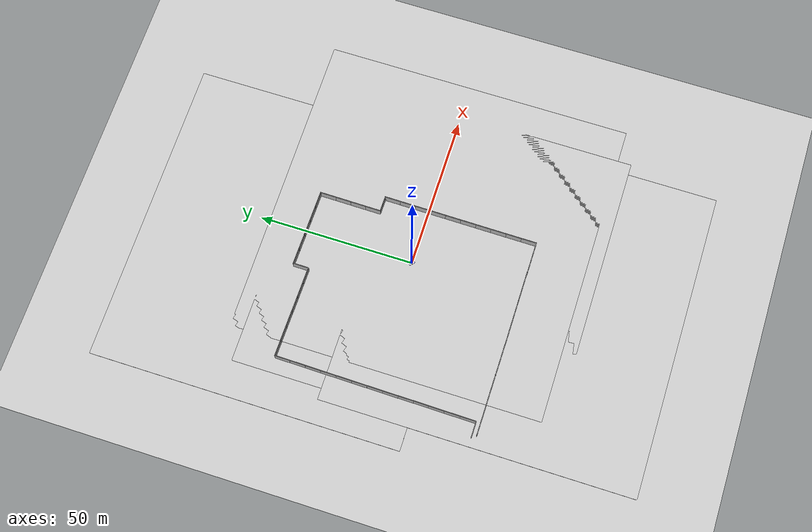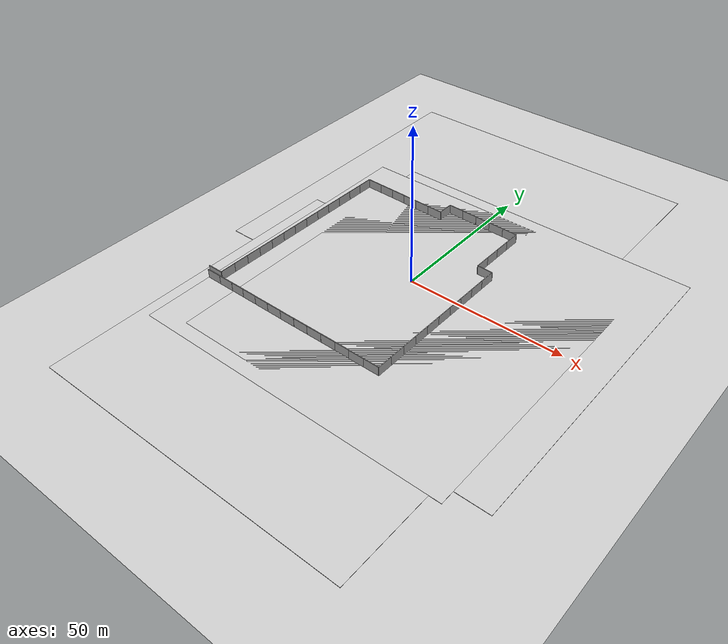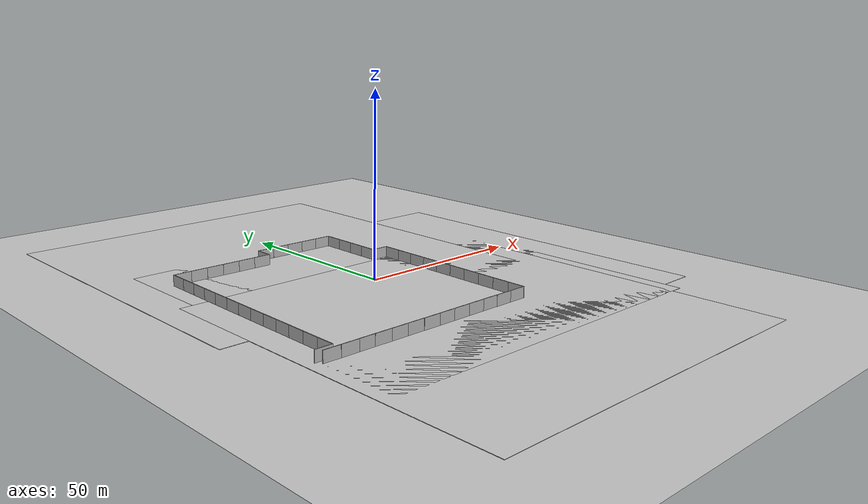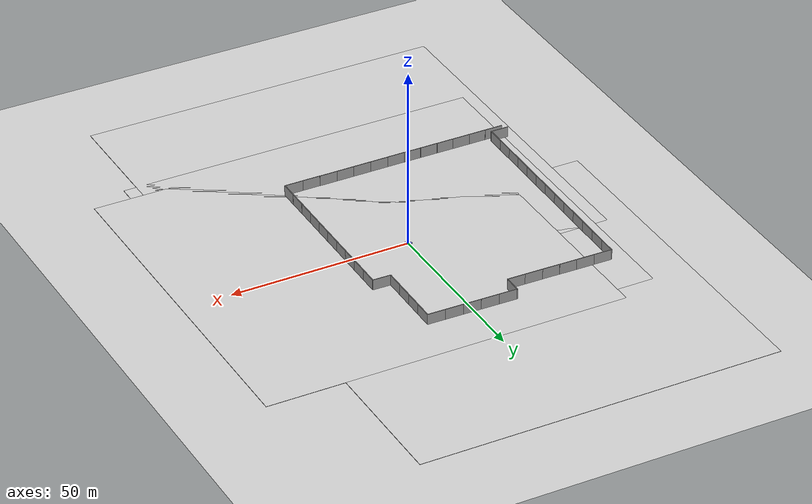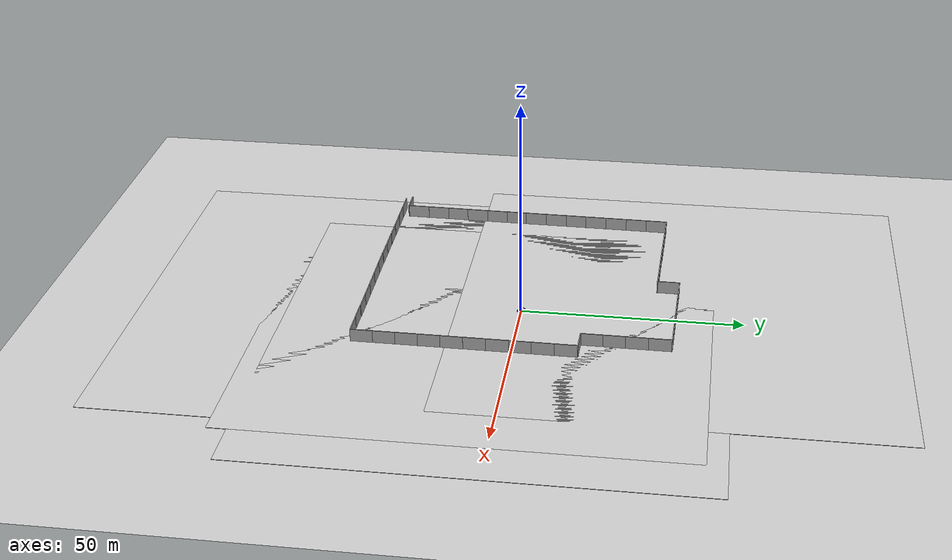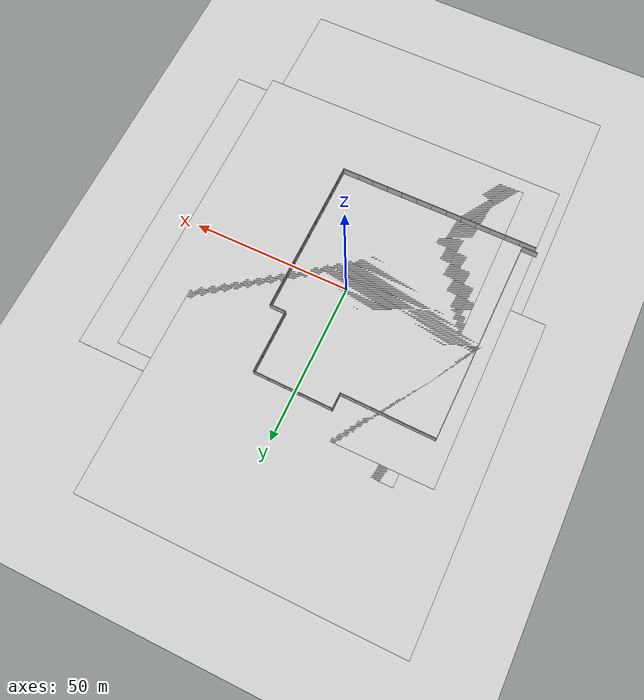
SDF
<sdf version="1.9">
 <world name="robotics_room">
  <physics name="1ms" type="ignored">
   <max_step_size>0.001</max_step_size>
   <real_time_factor>1</real_time_factor>
   <real_time_update_rate>1000</real_time_update_rate>
  </physics>
  <plugin name="ignition::gazebo::systems::Physics" filename="libignition-gazebo-physics-system.so"/>
  <plugin name="ignition::gazebo::systems::UserCommands" filename="libignition-gazebo-user-commands-system.so"/>
  <plugin name="ignition::gazebo::systems::SceneBroadcaster" filename="libignition-gazebo-scene-broadcaster-system.so"/>
  <plugin name="ignition::gazebo::systems::Sensors" filename="libignition-gazebo-sensors-system.so">
   <render_engine>ogre2</render_engine>
  </plugin>
  <gravity>0 0 -9.8</gravity>
  <magnetic_field>6e-06 2.3e-05 -4.2e-05</magnetic_field>
  <atmosphere type="adiabatic"/>
  <scene><ambient>0.4 0.4 0.4 1</ambient><background>0.7 0.7 0.7 1</background><shadows>true</shadows></scene>
  <model name="ground_plane">
   <static>true</static>
   <link name="link">
    <collision name="collision">
     <geometry><plane><normal>0 0 1</normal><size>100 100</size></plane></geometry>
     <surface>
      <friction>
       <ode><mu>50</mu></ode>
       <bullet><friction>1</friction><rolling_friction>0.10000000000000001</rolling_friction></bullet>
      </friction>
     </surface>
    </collision>
    <visual name="visual">
     <geometry><plane><normal>0 0 1</normal><size>100 100</size></plane></geometry>
     <material>
      <ambient>0.8 0.8 0.8 1</ambient>
      <diffuse>0.8 0.8 0.8 1</diffuse>
      <specular>0.8 0.8 0.8 1</specular>
     </material>
    </visual>
    <inertial>
     <mass>1</mass>
     <inertia><ixx>1</ixx><ixy>0</ixy><ixz>0</ixz><iyy>1</iyy><iyz>0</iyz><izz>1</izz></inertia>
    </inertial>
   </link>
  </model>
  <include>
   <uri>file:///home/dliujm/ros2_ws/install/robot_desc/share/robot_desc/models/lucy</uri>
   <name>lucy_robot</name>
   <pose>0 0 0 -0 0 -0.78</pose>
  </include>
  <model name="ground_plane_1">
   <static>true</static>
   <link name="link">
    <collision name="collision">
     <geometry><plane><normal>0 0 1</normal><size>100 100</size></plane></geometry>
     <surface>
      <friction>
       <ode><mu>50</mu></ode>
       <bullet><friction>1</friction><rolling_friction>0.10000000000000001</rolling_friction></bullet>
      </friction>
     </surface>
    </collision>
    <visual name="visual">
     <geometry><plane><normal>0 0 1</normal><size>100 100</size></plane></geometry>
     <material>
      <ambient>0.8 0.8 0.8 1</ambient>
      <diffuse>0.8 0.8 0.8 1</diffuse>
      <specular>0.8 0.8 0.8 1</specular>
     </material>
    </visual>
    <inertial>
     <mass>1</mass>
     <inertia><ixx>1</ixx><ixy>0</ixy><ixz>0</ixz><iyy>1</iyy><iyz>0</iyz><izz>1</izz></inertia>
    </inertial>
   </link>
   <pose>3.37132 -6.94607 0 0 -0 0</pose>
  </model>
  <model name="ground_plane_1_1">
   <static>true</static>
   <link name="link">
    <collision name="collision">
     <geometry><plane><normal>0 0 1</normal><size>100 100</size></plane></geometry>
     <surface>
      <friction>
       <ode><mu>50</mu></ode>
       <bullet><friction>1</friction><rolling_friction>0.10000000000000001</rolling_friction></bullet>
      </friction>
     </surface>
    </collision>
    <visual name="visual">
     <geometry><plane><normal>0 0 1</normal><size>100 100</size></plane></geometry>
     <material>
      <ambient>0.8 0.8 0.8 1</ambient>
      <diffuse>0.8 0.8 0.8 1</diffuse>
      <specular>0.8 0.8 0.8 1</specular>
     </material>
    </visual>
    <inertial>
     <mass>1</mass>
     <inertia><ixx>1</ixx><ixy>0</ixy><ixz>0</ixz><iyy>1</iyy><iyz>0</iyz><izz>1</izz></inertia>
    </inertial>
   </link>
   <pose>13.6849 -2.64222 0 0 -0 0</pose>
  </model>
  <model name="wall">
   <static>true</static>
   <link name="link">
    <collision name="collision"><geometry><box><size>5 0.2 3</size></box></geometry></collision>
    <visual name="visual">
     <geometry><box><size>5 0.2 3</size></box></geometry>
     <material><ambient>0.7 0.7 0.7 1</ambient><diffuse>0.7 0.7 0.7 1</diffuse></material>
    </visual>
    <inertial>
     <mass>1</mass>
     <inertia><ixx>1</ixx><ixy>0</ixy><ixz>0</ixz><iyy>1</iyy><iyz>0</iyz><izz>1</izz></inertia>
    </inertial>
   </link>
   <pose>0 -35.2766 1.50449 0 -0 0</pose>
  </model>
  <model name="ground_plane_1_2">
   <static>true</static>
   <link name="link">
    <collision name="collision">
     <geometry><plane><normal>0 0 1</normal><size>100 100</size></plane></geometry>
     <surface>
      <friction>
       <ode><mu>50</mu></ode>
       <bullet><friction>1</friction><rolling_friction>0.10000000000000001</rolling_friction></bullet>
      </friction>
     </surface>
    </collision>
    <visual name="visual">
     <geometry><plane><normal>0 0 1</normal><size>100 100</size></plane></geometry>
     <material>
      <ambient>0.8 0.8 0.8 1</ambient>
      <diffuse>0.8 0.8 0.8 1</diffuse>
      <specular>0.8 0.8 0.8 1</specular>
     </material>
    </visual>
    <inertial>
     <mass>1</mass>
     <inertia><ixx>1</ixx><ixy>0</ixy><ixz>0</ixz><iyy>1</iyy><iyz>0</iyz><izz>1</izz></inertia>
    </inertial>
   </link>
   <pose>-0.202127 -35.9388 0 0 -0 0</pose>
  </model>
  <model name="wall_1">
   <static>true</static>
   <link name="link">
    <collision name="collision"><geometry><box><size>5 0.2 3</size></box></geometry></collision>
    <visual name="visual">
     <geometry><box><size>5 0.2 3</size></box></geometry>
     <material><ambient>0.7 0.7 0.7 1</ambient><diffuse>0.7 0.7 0.7 1</diffuse></material>
    </visual>
   </link>
   <pose>-5.01711 -35.2867 1.50449 0 -0 0</pose>
  </model>
  <model name="wall_2">
   <static>true</static>
   <link name="link">
    <collision name="collision"><geometry><box><size>5 0.2 3</size></box></geometry></collision>
    <visual name="visual">
     <geometry><box><size>5 0.2 3</size></box></geometry>
     <material><ambient>0.7 0.7 0.7 1</ambient><diffuse>0.7 0.7 0.7 1</diffuse></material>
    </visual>
   </link>
   <pose>-10.0087 -35.2904 1.50449 0 -0 0</pose>
  </model>
  <model name="wall_3">
   <static>true</static>
   <link name="link">
    <collision name="collision"><geometry><box><size>5 0.2 3</size></box></geometry></collision>
    <visual name="visual">
     <geometry><box><size>5 0.2 3</size></box></geometry>
     <material><ambient>0.7 0.7 0.7 1</ambient><diffuse>0.7 0.7 0.7 1</diffuse></material>
    </visual>
   </link>
   <pose>4.87545 -35.2716 1.50449 0 -0 0</pose>
  </model>
  <model name="wall_4">
   <static>true</static>
   <link name="link">
    <collision name="collision"><geometry><box><size>5 0.2 3</size></box></geometry></collision>
    <visual name="visual">
     <geometry><box><size>5 0.2 3</size></box></geometry>
     <material><ambient>0.7 0.7 0.7 1</ambient><diffuse>0.7 0.7 0.7 1</diffuse></material>
    </visual>
   </link>
   <pose>9.82758 -35.33 1.50449 0 -0 0</pose>
  </model>
  <model name="wall_5">
   <static>true</static>
   <link name="link">
    <collision name="collision"><geometry><box><size>5 0.2 3</size></box></geometry></collision>
    <visual name="visual">
     <geometry><box><size>5 0.2 3</size></box></geometry>
     <material><ambient>0.7 0.7 0.7 1</ambient><diffuse>0.7 0.7 0.7 1</diffuse></material>
    </visual>
   </link>
   <pose>14.8056 -35.3183 1.50449 0 -0 0</pose>
  </model>
  <model name="wall_7">
   <static>true</static>
   <link name="link">
    <collision name="collision"><geometry><box><size>5 0.2 3</size></box></geometry></collision>
    <visual name="visual">
     <geometry><box><size>5 0.2 3</size></box></geometry>
     <material><ambient>0.7 0.7 0.7 1</ambient><diffuse>0.7 0.7 0.7 1</diffuse></material>
    </visual>
   </link>
   <pose>17.4193 -32.9231 1.50449 0 0 -1.57867</pose>
  </model>
  <model name="wall_7_1">
   <static>true</static>
   <link name="link">
    <collision name="collision"><geometry><box><size>5 0.2 3</size></box></geometry></collision>
    <visual name="visual">
     <geometry><box><size>5 0.2 3</size></box></geometry>
     <material><ambient>0.7 0.7 0.7 1</ambient><diffuse>0.7 0.7 0.7 1</diffuse></material>
    </visual>
   </link>
   <pose>17.4426 -27.9423 1.50449 0 0 -1.57867</pose>
  </model>
  <model name="wall_7_2">
   <static>true</static>
   <link name="link">
    <collision name="collision"><geometry><box><size>5 0.2 3</size></box></geometry></collision>
    <visual name="visual">
     <geometry><box><size>5 0.2 3</size></box></geometry>
     <material><ambient>0.7 0.7 0.7 1</ambient><diffuse>0.7 0.7 0.7 1</diffuse></material>
    </visual>
   </link>
   <pose>17.4693 -22.9812 1.50449 0 0 -1.57867</pose>
  </model>
  <model name="wall_7_3">
   <static>true</static>
   <link name="link">
    <collision name="collision"><geometry><box><size>5 0.2 3</size></box></geometry></collision>
    <visual name="visual">
     <geometry><box><size>5 0.2 3</size></box></geometry>
     <material><ambient>0.7 0.7 0.7 1</ambient><diffuse>0.7 0.7 0.7 1</diffuse></material>
    </visual>
   </link>
   <pose>17.508 -18.0005 1.50449 0 0 -1.57867</pose>
  </model>
  <model name="wall_7_4">
   <static>true</static>
   <link name="link">
    <collision name="collision"><geometry><box><size>5 0.2 3</size></box></geometry></collision>
    <visual name="visual">
     <geometry><box><size>5 0.2 3</size></box></geometry>
     <material><ambient>0.7 0.7 0.7 1</ambient><diffuse>0.7 0.7 0.7 1</diffuse></material>
    </visual>
   </link>
   <pose>17.5521 -12.9986 1.50449 0 0 -1.57867</pose>
  </model>
  <model name="wall_7_5">
   <static>true</static>
   <link name="link">
    <collision name="collision"><geometry><box><size>5 0.2 3</size></box></geometry></collision>
    <visual name="visual">
     <geometry><box><size>5 0.2 3</size></box></geometry>
     <material><ambient>0.7 0.7 0.7 1</ambient><diffuse>0.7 0.7 0.7 1</diffuse></material>
    </visual>
   </link>
   <pose>17.5839 -7.99492 1.50449 0 0 -1.57867</pose>
  </model>
  <model name="wall_7_6">
   <static>true</static>
   <link name="link">
    <collision name="collision"><geometry><box><size>5 0.2 3</size></box></geometry></collision>
    <visual name="visual">
     <geometry><box><size>5 0.2 3</size></box></geometry>
     <material><ambient>0.7 0.7 0.7 1</ambient><diffuse>0.7 0.7 0.7 1</diffuse></material>
    </visual>
   </link>
   <pose>17.6254 -3.00807 1.50449 0 0 -1.57867</pose>
  </model>
  <model name="wall_7_7">
   <static>true</static>
   <link name="link">
    <collision name="collision"><geometry><box><size>5 0.2 3</size></box></geometry></collision>
    <visual name="visual">
     <geometry><box><size>5 0.2 3</size></box></geometry>
     <material><ambient>0.7 0.7 0.7 1</ambient><diffuse>0.7 0.7 0.7 1</diffuse></material>
    </visual>
   </link>
   <pose>17.6643 1.98188 1.50449 0 0 -1.57867</pose>
  </model>
  <model name="wall_7_8">
   <static>true</static>
   <link name="link">
    <collision name="collision"><geometry><box><size>5 0.2 3</size></box></geometry></collision>
    <visual name="visual">
     <geometry><box><size>5 0.2 3</size></box></geometry>
     <material><ambient>0.7 0.7 0.7 1</ambient><diffuse>0.7 0.7 0.7 1</diffuse></material>
    </visual>
   </link>
   <pose>17.7003 6.98697 1.50449 0 0 -1.57867</pose>
  </model>
  <model name="wall_7_9">
   <static>true</static>
   <link name="link">
    <collision name="collision"><geometry><box><size>5 0.2 3</size></box></geometry></collision>
    <visual name="visual">
     <geometry><box><size>5 0.2 3</size></box></geometry>
     <material><ambient>0.7 0.7 0.7 1</ambient><diffuse>0.7 0.7 0.7 1</diffuse></material>
    </visual>
   </link>
   <pose>17.744 11.9433 1.50449 0 0 -1.57867</pose>
  </model>
  <model name="wall_7_10">
   <static>true</static>
   <link name="link">
    <collision name="collision"><geometry><box><size>5 0.2 3</size></box></geometry></collision>
    <visual name="visual">
     <geometry><box><size>5 0.2 3</size></box></geometry>
     <material><ambient>0.7 0.7 0.7 1</ambient><diffuse>0.7 0.7 0.7 1</diffuse></material>
    </visual>
   </link>
   <pose>15.3706 14.5675 1.50449 0 -0 3.12423</pose>
  </model>
  <model name="wall_7_9_1">
   <static>true</static>
   <link name="link">
    <collision name="collision"><geometry><box><size>5 0.2 3</size></box></geometry></collision>
    <visual name="visual">
     <geometry><box><size>5 0.2 3</size></box></geometry>
     <material><ambient>0.7 0.7 0.7 1</ambient><diffuse>0.7 0.7 0.7 1</diffuse></material>
    </visual>
   </link>
   <pose>12.7866 17.0253 1.50449 0 0 -1.57867</pose>
  </model>
  <model name="wall_7_9_2">
   <static>true</static>
   <link name="link">
    <collision name="collision"><geometry><box><size>5 0.2 3</size></box></geometry></collision>
    <visual name="visual">
     <geometry><box><size>5 0.2 3</size></box></geometry>
     <material><ambient>0.7 0.7 0.7 1</ambient><diffuse>0.7 0.7 0.7 1</diffuse></material>
    </visual>
   </link>
   <pose>12.8326 21.9834 1.50449 0 0 -1.57867</pose>
  </model>
  <model name="wall_7_9_3">
   <static>true</static>
   <link name="link">
    <collision name="collision"><geometry><box><size>5 0.2 3</size></box></geometry></collision>
    <visual name="visual">
     <geometry><box><size>5 0.2 3</size></box></geometry>
     <material><ambient>0.7 0.7 0.7 1</ambient><diffuse>0.7 0.7 0.7 1</diffuse></material>
    </visual>
   </link>
   <pose>12.8732 26.9224 1.50449 0 0 -1.57867</pose>
  </model>
  <model name="wall_7_9_4">
   <static>true</static>
   <link name="link">
    <collision name="collision"><geometry><box><size>5 0.2 3</size></box></geometry></collision>
    <visual name="visual">
     <geometry><box><size>5 0.2 3</size></box></geometry>
     <material><ambient>0.7 0.7 0.7 1</ambient><diffuse>0.7 0.7 0.7 1</diffuse></material>
    </visual>
   </link>
   <pose>12.917 31.9173 1.50449 0 0 -1.57867</pose>
  </model>
  <model name="wall_7_10_1">
   <static>true</static>
   <link name="link">
    <collision name="collision"><geometry><box><size>5 0.2 3</size></box></geometry></collision>
    <visual name="visual">
     <geometry><box><size>5 0.2 3</size></box></geometry>
     <material><ambient>0.7 0.7 0.7 1</ambient><diffuse>0.7 0.7 0.7 1</diffuse></material>
    </visual>
   </link>
   <pose>10.5507 34.5647 1.50449 0 -0 3.12423</pose>
  </model>
  <model name="wall_7_10_2">
   <static>true</static>
   <link name="link">
    <collision name="collision"><geometry><box><size>5 0.2 3</size></box></geometry></collision>
    <visual name="visual">
     <geometry><box><size>5 0.2 3</size></box></geometry>
     <material><ambient>0.7 0.7 0.7 1</ambient><diffuse>0.7 0.7 0.7 1</diffuse></material>
    </visual>
   </link>
   <pose>5.54363 34.6488 1.50449 0 -0 3.12423</pose>
  </model>
  <model name="wall_7_10_3">
   <static>true</static>
   <link name="link">
    <collision name="collision"><geometry><box><size>5 0.2 3</size></box></geometry></collision>
    <visual name="visual">
     <geometry><box><size>5 0.2 3</size></box></geometry>
     <material><ambient>0.7 0.7 0.7 1</ambient><diffuse>0.7 0.7 0.7 1</diffuse></material>
    </visual>
   </link>
   <pose>0.571802 34.7384 1.50449 0 -0 3.12423</pose>
  </model>
  <model name="wall_7_10_4">
   <static>true</static>
   <link name="link">
    <collision name="collision"><geometry><box><size>5 0.2 3</size></box></geometry></collision>
    <visual name="visual">
     <geometry><box><size>5 0.2 3</size></box></geometry>
     <material><ambient>0.7 0.7 0.7 1</ambient><diffuse>0.7 0.7 0.7 1</diffuse></material>
    </visual>
   </link>
   <pose>-4.45933 34.8251 1.50449 0 -0 3.12423</pose>
  </model>
  <model name="wall_7_10_5">
   <static>true</static>
   <link name="link">
    <collision name="collision"><geometry><box><size>5 0.2 3</size></box></geometry></collision>
    <visual name="visual">
     <geometry><box><size>5 0.2 3</size></box></geometry>
     <material><ambient>0.7 0.7 0.7 1</ambient><diffuse>0.7 0.7 0.7 1</diffuse></material>
    </visual>
   </link>
   <pose>-9.48187 34.9196 1.50449 0 -0 3.12423</pose>
  </model>
  <model name="wall_7_10_5_1">
   <static>true</static>
   <link name="link">
    <collision name="collision"><geometry><box><size>5 0.2 3</size></box></geometry></collision>
    <visual name="visual">
     <geometry><box><size>5 0.2 3</size></box></geometry>
     <material><ambient>0.7 0.7 0.7 1</ambient><diffuse>0.7 0.7 0.7 1</diffuse></material>
    </visual>
   </link>
   <pose>-12.1066 32.5743 1.50449 0 0 -1.58082</pose>
  </model>
  <model name="ground_plane_1_1_1">
   <static>true</static>
   <link name="link">
    <collision name="collision">
     <geometry><plane><normal>0 0 1</normal><size>100 100</size></plane></geometry>
     <surface>
      <friction>
       <ode><mu>50</mu></ode>
       <bullet><friction>1</friction><rolling_friction>0.10000000000000001</rolling_friction></bullet>
      </friction>
     </surface>
    </collision>
    <visual name="visual">
     <geometry><plane><normal>0 0 1</normal><size>100 100</size></plane></geometry>
     <material>
      <ambient>0.8 0.8 0.8 1</ambient>
      <diffuse>0.8 0.8 0.8 1</diffuse>
      <specular>0.8 0.8 0.8 1</specular>
     </material>
    </visual>
    <inertial>
     <mass>1</mass>
     <inertia><ixx>1</ixx><ixy>0</ixy><ixz>0</ixz><iyy>1</iyy><iyz>0</iyz><izz>1</izz></inertia>
    </inertial>
   </link>
   <pose>-7.7862 35.4267 0 0 -0 0</pose>
  </model>
  <model name="wall_7_10_5_2">
   <static>true</static>
   <link name="link">
    <collision name="collision"><geometry><box><size>5 0.2 3</size></box></geometry></collision>
    <visual name="visual">
     <geometry><box><size>5 0.2 3</size></box></geometry>
     <material><ambient>0.7 0.7 0.7 1</ambient><diffuse>0.7 0.7 0.7 1</diffuse></material>
    </visual>
   </link>
   <pose>-14.5273 30.0144 1.50449 0 -0 3.12423</pose>
  </model>
  <model name="wall_7_10_5_2_1">
   <static>true</static>
   <link name="link">
    <collision name="collision"><geometry><box><size>5 0.2 3</size></box></geometry></collision>
    <visual name="visual">
     <geometry><box><size>5 0.2 3</size></box></geometry>
     <material><ambient>0.7 0.7 0.7 1</ambient><diffuse>0.7 0.7 0.7 1</diffuse></material>
    </visual>
   </link>
   <pose>-19.5274 30.0957 1.50449 0 -0 3.12423</pose>
  </model>
  <model name="wall_7_10_5_2_1_1">
   <static>true</static>
   <link name="link">
    <collision name="collision"><geometry><box><size>5 0.2 3</size></box></geometry></collision>
    <visual name="visual">
     <geometry><box><size>5 0.2 3</size></box></geometry>
     <material><ambient>0.7 0.7 0.7 1</ambient><diffuse>0.7 0.7 0.7 1</diffuse></material>
    </visual>
   </link>
   <pose>-24.5301 30.1772 1.50449 0 -0 3.12423</pose>
  </model>
  <model name="wall_7_10_5_2_1_2">
   <static>true</static>
   <link name="link">
    <collision name="collision"><geometry><box><size>5 0.2 3</size></box></geometry></collision>
    <visual name="visual">
     <geometry><box><size>5 0.2 3</size></box></geometry>
     <material><ambient>0.7 0.7 0.7 1</ambient><diffuse>0.7 0.7 0.7 1</diffuse></material>
    </visual>
   </link>
   <pose>-29.3855 30.2908 1.50449 0 -0 3.12423</pose>
  </model>
  <model name="wall_7_10_5_2_1_3">
   <static>true</static>
   <link name="link">
    <collision name="collision"><geometry><box><size>5 0.2 3</size></box></geometry></collision>
    <visual name="visual">
     <geometry><box><size>5 0.2 3</size></box></geometry>
     <material><ambient>0.7 0.7 0.7 1</ambient><diffuse>0.7 0.7 0.7 1</diffuse></material>
    </visual>
   </link>
   <pose>-34.2301 30.3811 1.50449 0 -0 3.12423</pose>
  </model>
  <model name="wall_7_10_5_2_1_4">
   <static>true</static>
   <link name="link">
    <collision name="collision"><geometry><box><size>5 0.2 3</size></box></geometry></collision>
    <visual name="visual">
     <geometry><box><size>5 0.2 3</size></box></geometry>
     <material><ambient>0.7 0.7 0.7 1</ambient><diffuse>0.7 0.7 0.7 1</diffuse></material>
    </visual>
   </link>
   <pose>-39.219 30.4453 1.50449 0 -0 3.12423</pose>
  </model>
  <model name="wall_7_10_5_2_1_5">
   <static>true</static>
   <link name="link">
    <collision name="collision"><geometry><box><size>5 0.2 3</size></box></geometry></collision>
    <visual name="visual">
     <geometry><box><size>5 0.2 3</size></box></geometry>
     <material><ambient>0.7 0.7 0.7 1</ambient><diffuse>0.7 0.7 0.7 1</diffuse></material>
    </visual>
   </link>
   <pose>-41.8509 28.0967 1.50449 0 -0 1.55685</pose>
  </model>
  <model name="wall_7_10_5_2_1_5_1">
   <static>true</static>
   <link name="link">
    <collision name="collision"><geometry><box><size>5 0.2 3</size></box></geometry></collision>
    <visual name="visual">
     <geometry><box><size>5 0.2 3</size></box></geometry>
     <material><ambient>0.7 0.7 0.7 1</ambient><diffuse>0.7 0.7 0.7 1</diffuse></material>
    </visual>
   </link>
   <pose>-41.9211 23.1661 1.50449 0 -0 1.55685</pose>
  </model>
  <model name="wall_7_10_5_2_1_5_2">
   <static>true</static>
   <link name="link">
    <collision name="collision"><geometry><box><size>5 0.2 3</size></box></geometry></collision>
    <visual name="visual">
     <geometry><box><size>5 0.2 3</size></box></geometry>
     <material><ambient>0.7 0.7 0.7 1</ambient><diffuse>0.7 0.7 0.7 1</diffuse></material>
    </visual>
   </link>
   <pose>-41.9902 18.2015 1.50449 0 -0 1.55685</pose>
  </model>
  <model name="wall_7_10_5_2_1_5_3">
   <static>true</static>
   <link name="link">
    <collision name="collision"><geometry><box><size>5 0.2 3</size></box></geometry></collision>
    <visual name="visual">
     <geometry><box><size>5 0.2 3</size></box></geometry>
     <material><ambient>0.7 0.7 0.7 1</ambient><diffuse>0.7 0.7 0.7 1</diffuse></material>
    </visual>
   </link>
   <pose>-42.0628 13.2148 1.50449 0 -0 1.55685</pose>
  </model>
  <model name="wall_7_10_5_2_1_5_4">
   <static>true</static>
   <link name="link">
    <collision name="collision"><geometry><box><size>5 0.2 3</size></box></geometry></collision>
    <visual name="visual">
     <geometry><box><size>5 0.2 3</size></box></geometry>
     <material><ambient>0.7 0.7 0.7 1</ambient><diffuse>0.7 0.7 0.7 1</diffuse></material>
    </visual>
   </link>
   <pose>-42.1335 8.27192 1.50449 0 -0 1.55685</pose>
  </model>
  <model name="wall_7_10_5_2_1_5_5">
   <static>true</static>
   <link name="link">
    <collision name="collision"><geometry><box><size>5 0.2 3</size></box></geometry></collision>
    <visual name="visual">
     <geometry><box><size>5 0.2 3</size></box></geometry>
     <material><ambient>0.7 0.7 0.7 1</ambient><diffuse>0.7 0.7 0.7 1</diffuse></material>
    </visual>
   </link>
   <pose>-42.1914 3.28587 1.50449 0 -0 1.55685</pose>
  </model>
  <model name="wall_7_10_5_2_1_5_6">
   <static>true</static>
   <link name="link">
    <collision name="collision"><geometry><box><size>5 0.2 3</size></box></geometry></collision>
    <visual name="visual">
     <geometry><box><size>5 0.2 3</size></box></geometry>
     <material><ambient>0.7 0.7 0.7 1</ambient><diffuse>0.7 0.7 0.7 1</diffuse></material>
    </visual>
   </link>
   <pose>-42.2558 -1.67549 1.50449 0 -0 1.55685</pose>
  </model>
  <model name="wall_7_10_5_2_1_5_7">
   <static>true</static>
   <link name="link">
    <collision name="collision"><geometry><box><size>5 0.2 3</size></box></geometry></collision>
    <visual name="visual">
     <geometry><box><size>5 0.2 3</size></box></geometry>
     <material><ambient>0.7 0.7 0.7 1</ambient><diffuse>0.7 0.7 0.7 1</diffuse></material>
    </visual>
   </link>
   <pose>-42.323 -6.67486 1.50449 0 -0 1.55685</pose>
  </model>
  <model name="wall_7_10_5_2_1_5_8">
   <static>true</static>
   <link name="link">
    <collision name="collision"><geometry><box><size>5 0.2 3</size></box></geometry></collision>
    <visual name="visual">
     <geometry><box><size>5 0.2 3</size></box></geometry>
     <material><ambient>0.7 0.7 0.7 1</ambient><diffuse>0.7 0.7 0.7 1</diffuse></material>
    </visual>
   </link>
   <pose>-42.3603 -11.4984 1.50449 0 -0 1.55685</pose>
  </model>
  <model name="wall_7_10_5_2_1_5_9">
   <static>true</static>
   <link name="link">
    <collision name="collision"><geometry><box><size>5 0.2 3</size></box></geometry></collision>
    <visual name="visual">
     <geometry><box><size>5 0.2 3</size></box></geometry>
     <material><ambient>0.7 0.7 0.7 1</ambient><diffuse>0.7 0.7 0.7 1</diffuse></material>
    </visual>
   </link>
   <pose>-42.4207 -16.369 1.50449 0 -0 1.55685</pose>
  </model>
  <model name="wall_7_10_5_2_1_5_10">
   <static>true</static>
   <link name="link">
    <collision name="collision"><geometry><box><size>5 0.2 3</size></box></geometry></collision>
    <visual name="visual">
     <geometry><box><size>5 0.2 3</size></box></geometry>
     <material><ambient>0.7 0.7 0.7 1</ambient><diffuse>0.7 0.7 0.7 1</diffuse></material>
    </visual>
   </link>
   <pose>-42.4946 -21.2695 1.50449 0 -0 1.55685</pose>
  </model>
  <model name="wall_7_10_5_2_1_5_11">
   <static>true</static>
   <link name="link">
    <collision name="collision"><geometry><box><size>5 0.2 3</size></box></geometry></collision>
    <visual name="visual">
     <geometry><box><size>5 0.2 3</size></box></geometry>
     <material><ambient>0.7 0.7 0.7 1</ambient><diffuse>0.7 0.7 0.7 1</diffuse></material>
    </visual>
   </link>
   <pose>-42.5626 -26.2559 1.50449 0 -0 1.55685</pose>
  </model>
  <model name="wall_7_10_5_2_1_5_12">
   <static>true</static>
   <link name="link">
    <collision name="collision"><geometry><box><size>5 0.2 3</size></box></geometry></collision>
    <visual name="visual">
     <geometry><box><size>5 0.2 3</size></box></geometry>
     <material><ambient>0.7 0.7 0.7 1</ambient><diffuse>0.7 0.7 0.7 1</diffuse></material>
    </visual>
   </link>
   <pose>-42.6138 -31.241 1.50449 0 -0 1.55685</pose>
  </model>
  <model name="wall_2_1">
   <static>true</static>
   <link name="link">
    <collision name="collision"><geometry><box><size>5 0.2 3</size></box></geometry></collision>
    <visual name="visual">
     <geometry><box><size>5 0.2 3</size></box></geometry>
     <material><ambient>0.7 0.7 0.7 1</ambient><diffuse>0.7 0.7 0.7 1</diffuse></material>
    </visual>
   </link>
   <pose>-14.8674 -35.312 1.50449 0 -0 0</pose>
  </model>
  <model name="wall_2_1_1">
   <static>true</static>
   <link name="link">
    <collision name="collision"><geometry><box><size>5 0.2 3</size></box></geometry></collision>
    <visual name="visual">
     <geometry><box><size>5 0.2 3</size></box></geometry>
     <material><ambient>0.7 0.7 0.7 1</ambient><diffuse>0.7 0.7 0.7 1</diffuse></material>
    </visual>
   </link>
   <pose>-19.8879 -35.2727 1.50449 0 -0 0</pose>
  </model>
  <model name="wall_2_1_2">
   <static>true</static>
   <link name="link">
    <collision name="collision"><geometry><box><size>5 0.2 3</size></box></geometry></collision>
    <visual name="visual">
     <geometry><box><size>5 0.2 3</size></box></geometry>
     <material><ambient>0.7 0.7 0.7 1</ambient><diffuse>0.7 0.7 0.7 1</diffuse></material>
    </visual>
   </link>
   <pose>-24.7067 -35.2654 1.50449 0 -0 0</pose>
  </model>
  <model name="wall_2_1_3">
   <static>true</static>
   <link name="link">
    <collision name="collision"><geometry><box><size>5 0.2 3</size></box></geometry></collision>
    <visual name="visual">
     <geometry><box><size>5 0.2 3</size></box></geometry>
     <material><ambient>0.7 0.7 0.7 1</ambient><diffuse>0.7 0.7 0.7 1</diffuse></material>
    </visual>
   </link>
   <pose>-29.6231 -35.2366 1.50449 0 -0 0</pose>
  </model>
  <model name="wall_2_1_4">
   <static>true</static>
   <link name="link">
    <collision name="collision"><geometry><box><size>5 0.2 3</size></box></geometry></collision>
    <visual name="visual">
     <geometry><box><size>5 0.2 3</size></box></geometry>
     <material><ambient>0.7 0.7 0.7 1</ambient><diffuse>0.7 0.7 0.7 1</diffuse></material>
    </visual>
   </link>
   <pose>-34.258 -35.2167 1.50449 0 -0 0</pose>
  </model>
  <model name="wall_2_1_5">
   <static>true</static>
   <link name="link">
    <collision name="collision"><geometry><box><size>5 0.2 3</size></box></geometry></collision>
    <visual name="visual">
     <geometry><box><size>5 0.2 3</size></box></geometry>
     <material><ambient>0.7 0.7 0.7 1</ambient><diffuse>0.7 0.7 0.7 1</diffuse></material>
    </visual>
   </link>
   <pose>-39.137 -35.2235 1.50449 0 -0 0</pose>
  </model>
  <model name="wall_2_1_6">
   <static>true</static>
   <link name="link">
    <collision name="collision"><geometry><box><size>5 0.2 3</size></box></geometry></collision>
    <visual name="visual">
     <geometry><box><size>5 0.2 3</size></box></geometry>
     <material><ambient>0.7 0.7 0.7 1</ambient><diffuse>0.7 0.7 0.7 1</diffuse></material>
    </visual>
   </link>
   <pose>-45.0616 -33.8034 1.50449 0 -0 0</pose>
  </model>
  <model name="wall_2_1_7">
   <static>true</static>
   <link name="link">
    <collision name="collision"><geometry><box><size>5 0.2 3</size></box></geometry></collision>
    <visual name="visual">
     <geometry><box><size>5 0.2 3</size></box></geometry>
     <material><ambient>0.7 0.7 0.7 1</ambient><diffuse>0.7 0.7 0.7 1</diffuse></material>
    </visual>
   </link>
   <pose>-43.9922 -35.2071 1.50449 0 -0 0</pose>
  </model>
  <light name="sun" type="directional">
   <pose>0 0 10 0 -0 0</pose>
   <cast_shadows>false</cast_shadows>
   <intensity>1</intensity>
   <direction>-0.5 0.1 -0.9</direction>
   <diffuse>1 1 1 1</diffuse>
   <specular>0.5 0.5 0.5 1</specular>
   <attenuation>
    <range>1000</range>
    <linear>0.01</linear>
    <constant>0.90000000000000002</constant>
    <quadratic>0.001</quadratic>
   </attenuation>
   <spot><inner_angle>0</inner_angle><outer_angle>0</outer_angle><falloff>0</falloff></spot>
  </light>
 </world>
</sdf>

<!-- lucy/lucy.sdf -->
<sdf version="1.6">
  <model name='lucy_robot'>
      <link name='chassis'>
        <pose>0 0 0 0 0 0</pose>
        <inertial>
          <mass>1.14395</mass>
          <inertia>
            <ixx>0.126164</ixx>
            <ixy>0</ixy>
            <ixz>0</ixz>
            <iyy>0.416519</iyy>
            <iyz>0</iyz>
            <izz>0.481014</izz>
          </inertia>
        </inertial>
        <visual name='visual'>
          <geometry>
            <box>
              <size>1.831 0.705 0.885</size>
            </box>
          </geometry>
          <material>
            <ambient>0.5 0.5 1.0 1</ambient>
            <diffuse>0.5 0.5 1.0 1</diffuse>
            <specular>0.0 0.0 1.0 1</specular>
          </material>
        </visual>
        <collision name='collision'>
          <geometry>
            <box>
              <size>1.831 0.705 0.885</size>
            </box>
          </geometry>
        </collision>
      </link>

      <link name='front_left_wheel'>
        <pose>0.4335 0.335 -0.4425 -1.5707 0 0</pose>
        <inertial>
          <mass>2</mass>
          <inertia>
            <ixx>0.145833</ixx>
            <ixy>0</ixy>
            <ixz>0</ixz>
            <iyy>0.145833</iyy>
            <iyz>0</iyz>
            <izz>0.125</izz>
          </inertia>
        </inertial>
        <visual name='visual'>
          <geometry>
            <cylinder>
              <length>0.062</length>
              <radius>0.278</radius>
            </cylinder>
          </geometry>
          <material>
            <ambient>0.2 0.2 0.2 1</ambient>
            <diffuse>0.2 0.2 0.2 1</diffuse>
            <specular>0.2 0.2 0.2 1</specular>
          </material>
        </visual>
        <collision name='collision'>
          <geometry>
            <cylinder>
              <length>0.062</length>
              <radius>0.278</radius>
            </cylinder>
          </geometry>
          <surface>
            <friction>
              <ode>
                <mu>0.5</mu>
                <mu2>1.0</mu2>
                <fdir1>0 0 1</fdir1>
              </ode>
              <bullet>
                <friction>0.5</friction>
                <friction2>1</friction2>
                <rolling_friction>0.1</rolling_friction>
              </bullet>
            </friction>
          </surface>
        </collision>
      </link>

      <link name='rear_left_wheel'>
        <pose>-0.4335 0.335 -0.4425 -1.5707 0 0</pose>
        <inertial>
          <mass>2</mass>
          <inertia>
            <ixx>0.145833</ixx>
            <ixy>0</ixy>
            <ixz>0</ixz>
            <iyy>0.145833</iyy>
            <iyz>0</iyz>
            <izz>0.125</izz>
          </inertia>
        </inertial>
        <visual name='visual'>
          <geometry>
            <cylinder>
              <length>0.062</length>
              <radius>0.278</radius>
            </cylinder>
          </geometry>
          <material>
            <ambient>0.2 0.2 0.2 1</ambient>
            <diffuse>0.2 0.2 0.2 1</diffuse>
            <specular>0.2 0.2 0.2 1</specular>
          </material>
        </visual>
        <collision name='collision'>
          <geometry>
            <cylinder>
              <length>0.062</length>
              <radius>0.278</radius>
            </cylinder>
          </geometry>
          <surface>
            <friction>
              <ode>
                <mu>0.5</mu>
                <mu2>1.0</mu2>
                <fdir1>0 0 1</fdir1>
              </ode>
              <bullet>
                <friction>0.5</friction>
                <friction2>1</friction2>
                <rolling_friction>0.5</rolling_friction>
              </bullet>
            </friction>
          </surface>
        </collision>
      </link>

      <link name='front_right_wheel'>
        <pose>.4335 -0.335 -0.4425 -1.5707 0 0</pose>
        <inertial>
          <mass>2</mass>
          <inertia>
            <ixx>0.145833</ixx>
            <ixy>0</ixy>
            <ixz>0</ixz>
            <iyy>0.145833</iyy>
            <iyz>0</iyz>
            <izz>0.125</izz>
          </inertia>
        </inertial>
        <visual name='visual'>
          <geometry>
            <cylinder>
              <length>0.062</length>
              <radius>0.278</radius>
            </cylinder>
          </geometry>
          <material>
            <ambient>0.2 0.2 0.2 1</ambient>
            <diffuse>0.2 0.2 0.2 1</diffuse>
            <specular>0.2 0.2 0.2 1</specular>
          </material>
        </visual>
        <collision name='collision'>
          <geometry>
            <cylinder>
              <length>0.062</length>
              <radius>0.278</radius>
            </cylinder>
          </geometry>
          <surface>
            <friction>
              <ode>
                <mu>0.5</mu>
                <mu2>1.0</mu2>
                <fdir1>0 0 1</fdir1>
              </ode>
              <bullet>
                <friction>0.5</friction>
                <friction2>1</friction2>
                <rolling_friction>0.1</rolling_friction>
              </bullet>
            </friction>
          </surface>
        </collision>
      </link>

      <link name='rear_right_wheel'>
        <pose>-.4335 -0.335 -0.4425 -1.5707 0 0</pose>
        <inertial>
          <mass>2</mass>
          <inertia>
            <ixx>0.145833</ixx>
            <ixy>0</ixy>
            <ixz>0</ixz>
            <iyy>0.145833</iyy>
            <iyz>0</iyz>
            <izz>0.125</izz>
          </inertia>
        </inertial>
        <visual name='visual'>
          <geometry>
            <cylinder>
              <length>0.062</length>
              <radius>0.278</radius>
            </cylinder>
          </geometry>
          <material>
            <ambient>0.2 0.2 0.2 1</ambient>
            <diffuse>0.2 0.2 0.2 1</diffuse>
            <specular>0.2 0.2 0.2 1</specular>
          </material>
        </visual>
        <collision name='collision'>
          <geometry>
            <cylinder>
              <length>0.062</length>
              <radius>0.278</radius>
            </cylinder>
          </geometry>
          <surface>
            <friction>
              <ode>
                <mu>0.5</mu>
                <mu2>1.0</mu2>
                <fdir1>0 0 1</fdir1>
              </ode>
              <bullet>
                <friction>0.5</friction>
                <friction2>1</friction2>
                <rolling_friction>0.5</rolling_friction>
              </bullet>
            </friction>
          </surface>
        </collision>
      </link>

      <link name="front_left_wheel_steering_link">
        <pose>0.4335 0.209971 -0.3975 0 0 0</pose>
        <inertial>
          <mass>0.5</mass>
          <inertia>
            <ixx>0.0153</ixx>
            <iyy>0.025</iyy>
            <izz>0.0153</izz>
          </inertia>
        </inertial>
        <visual name="steering_link_visual">
          <pose>0 0 0 0 0 0</pose>
          <geometry>
            <cylinder>
              <length>0.1</length>
              <radius>0.03</radius>
            </cylinder>
          </geometry>
          <material>
            <ambient>1 1 1</ambient>
            <diffuse>1 1 1</diffuse>
          </material>
        </visual>
      </link>

      <link name="front_right_wheel_steering_link">
        <pose>0.4335 -0.209971 -0.3975 0 0 0</pose>
        <inertial>
          <mass>0.5</mass>
          <inertia>
            <ixx>0.0153</ixx>
            <iyy>0.025</iyy>
            <izz>0.0153</izz>
          </inertia>
        </inertial>
        <visual name="steering_link_visual">
          <pose>0 0 0 0 0 0</pose>
          <geometry>
            <cylinder>
              <length>0.1</length>
              <radius>0.03</radius>
            </cylinder>
          </geometry>
          <material>
            <ambient>1 1 1</ambient>
            <diffuse>1 1 1</diffuse>
          </material>
        </visual>
      </link>

      <joint name="front_left_wheel_steering_joint" type="revolute">
        <child>front_left_wheel_steering_link</child>
        <parent>chassis</parent>
        <axis>
          <xyz>0 0 1</xyz>
          <limit>
            <lower>-0.6</lower>
            <upper>+0.6</upper>
            <velocity>1.0</velocity>
            <effort>25</effort>
          </limit>
          <use_parent_model_frame>1</use_parent_model_frame>
        </axis>
      </joint>

      <joint name="front_right_wheel_steering_joint" type="revolute">
        <parent>chassis</parent>
        <child>front_right_wheel_steering_link</child>
        <axis>
          <xyz>0 0 1</xyz>
          <limit>
            <lower>-0.6</lower>
            <upper>+0.6</upper>
            <velocity>1.0</velocity>
            <effort>25</effort>
          </limit>
        </axis>
      </joint>

      <joint name='front_left_wheel_joint' type='revolute'>
        <parent>front_left_wheel_steering_link</parent>
        <child>front_left_wheel</child>
        <axis>
          <xyz>0 0 1</xyz>
          <limit>
            <lower>-1.79769e+308</lower>
            <upper>1.79769e+308</upper>
          </limit>
        </axis>
      </joint>

      <joint name='front_right_wheel_joint' type='revolute'>
        <parent>front_right_wheel_steering_link</parent>
        <child>front_right_wheel</child>
        <axis>
          <xyz>0 0 1</xyz>
          <limit>
            <lower>-1.79769e+308</lower>
            <upper>1.79769e+308</upper>
          </limit>
        </axis>
      </joint>

      <joint name='rear_left_wheel_joint' type='revolute'>
        <parent>chassis</parent>
        <child>rear_left_wheel</child>
        <axis>
          <xyz>0 0 1</xyz>
          <limit>
            <lower>-1.79769e+308</lower>
            <upper>1.79769e+308</upper>
          </limit>
        </axis>
      </joint>

      <joint name='rear_right_wheel_joint' type='revolute'>
        <parent>chassis</parent>
        <child>rear_right_wheel</child>
        <axis>
          <xyz>0 0 1</xyz>
          <limit>
            <lower>-1.79769e+308</lower>
            <upper>1.79769e+308</upper>
          </limit>
        </axis>
      </joint>

      <plugin
        filename="gz-sim-ackermann-steering-system"
        name="gz::sim::systems::AckermannSteering">
        <left_joint>front_left_wheel_joint</left_joint>
        <left_joint>rear_left_wheel_joint</left_joint>
        <right_joint>front_right_wheel_joint</right_joint>
        <right_joint>rear_right_wheel_joint</right_joint>
        <left_steering_joint>front_left_wheel_steering_joint</left_steering_joint>
        <right_steering_joint>front_right_wheel_steering_joint</right_steering_joint>
        <kingpin_width>0.419942</kingpin_width>
        <steering_limit>0.5</steering_limit>
        <wheel_base>0.867</wheel_base>
        <wheel_separation>0.67</wheel_separation>
        <wheel_radius>0.278</wheel_radius>
        <min_velocity>-1</min_velocity>
        <max_velocity>1</max_velocity>
        <min_acceleration>-3</min_acceleration>
        <max_acceleration>3</max_acceleration>
      </plugin>

    </model>
</sdf>
